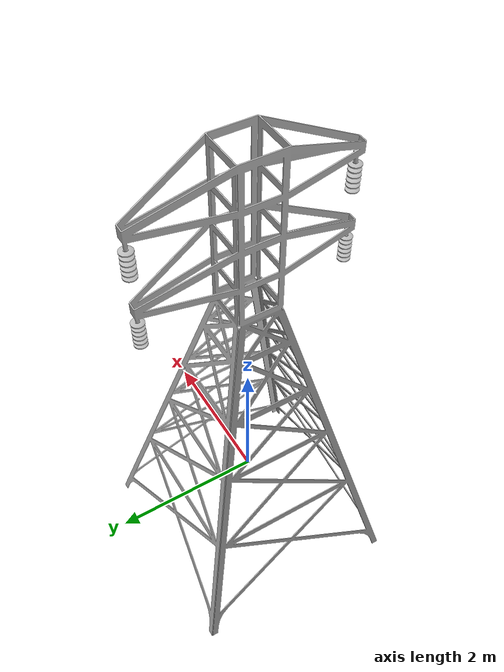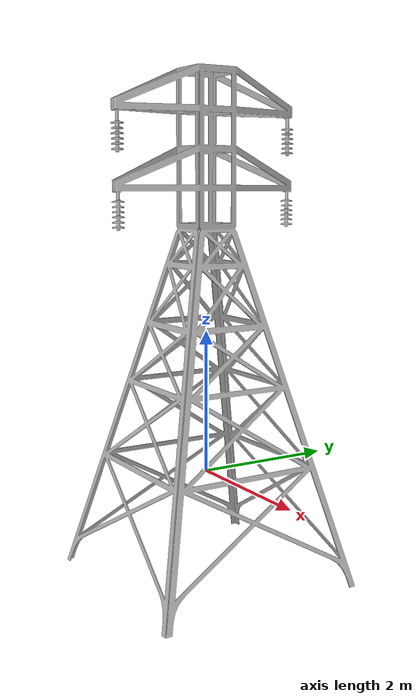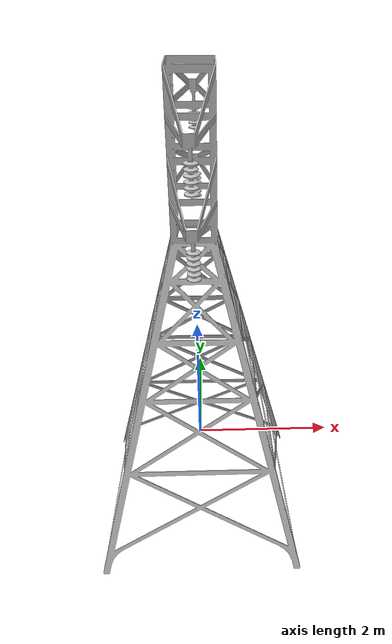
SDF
<?xml version="1.0" ?>

  <sdf version="1.5">
    <model name="electric_tower_base">
      <static>true</static>
      <link name='base'>
      <pose>0.0 -0.0 0.0 0 -0 0</pose>
      <inertial>
        <pose>0 0 0 0 -0 0</pose>
        <mass>0.025</mass>
        <inertia>
          <ixx>9.75e-06</ixx>
          <ixy>0</ixy>
          <ixz>0</ixz>
          <iyy>0.000166704</iyy>
          <iyz>0</iyz>
          <izz>0.000167604</izz>
        </inertia>
      </inertial>
      <collision name='base_collision'>
        <pose>0 0 0 0 -0 0</pose>
        <geometry>
          <mesh>
            <scale>1 1 1</scale>
            <uri>model://electric_tower_base/meshes/base.STL</uri>
          </mesh>
        </geometry>
        <surface>
          <contact>
            <ode />
          </contact>
          <friction>
            <ode />
          </friction>
        </surface>
      </collision>
      <visual name='base_visual'>
        <pose>0 0 0 0 -0 0</pose>
        <geometry>
          <mesh>
            <scale>1 1 1</scale>
            <uri>model://electric_tower_base/meshes/base.STL</uri>
          </mesh>
        </geometry>
        <material>
          <script>
            <uri>__default__</uri>
          </script>
        </material>
      </visual>
      <gravity>1</gravity>
      <velocity_decay />
      <self_collide>0</self_collide>
    </link>
  </model>
</sdf>
